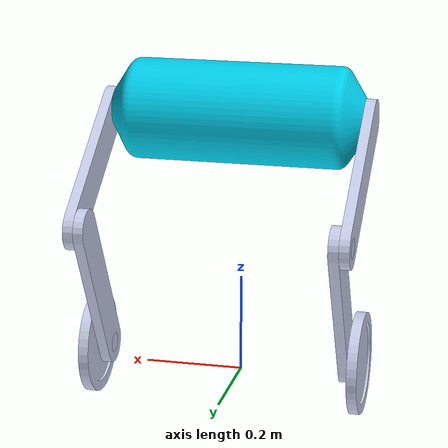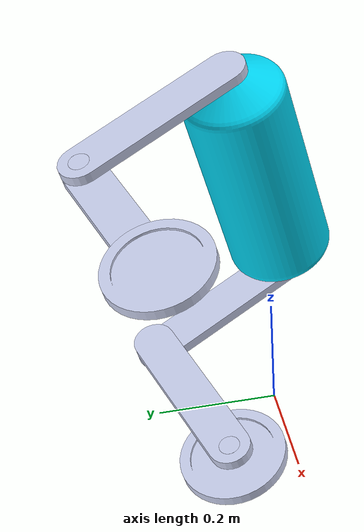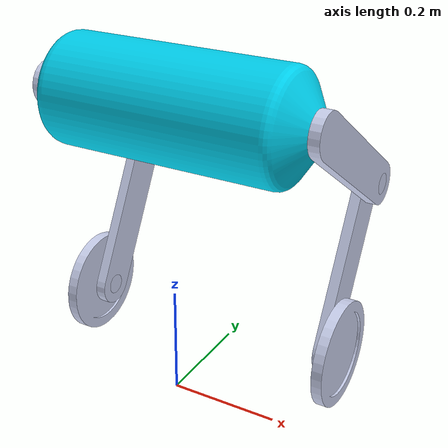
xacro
<?xml version="1.0" encoding="utf-8"?>
<robot xmlns:xacro="http://www.ros.org/wiki/xacro">

  <!--   LINKS               -->
  <link name="base_link"></link>
  <link name="Waist">
    <inertial>
      <origin xyz="-1.18888240640652E-16 -0.00507058467782265 -0.0187972227348701" rpy="0 0 0" />
      <mass value="6.4540071153471" />
      <inertia ixx="0.0700688932175611" ixy="-3.86937762023137E-19" ixz="-1.76854570708965E-20"
        iyy="0.292430846914939" iyz="-1.32037216353675E-18" izz="0.292430846914939" />
    </inertial>
    <visual>
      <origin xyz="0 0 0" rpy="0 0 0" />
      <geometry>
        <mesh filename="file://$(find bpwr)/description/meshes/Waist.STL" />
      </geometry>
      <material name="blue">
        <color rgba="0 0.819607843137255 0.933333333333333 1" />
      </material>
    </visual>
    <collision>
      <origin xyz="0 0 0" rpy="0 0 0" />
      <geometry>
        <mesh filename="file://$(find bpwr)/description/meshes/Waist.STL" />
      </geometry>
    </collision>
  </link>

  <link name="Hip_L">
    <inertial>
      <origin xyz="1.14491749414469E-16 -0.145390450825359 -0.0291728991057009" rpy="0 0 0" />
      <mass value="0.607730964914872" />
      <inertia ixx="0.0072795750548367" ixy="2.80537312130624E-18" ixz="-2.51690953028264E-19"
        iyy="0.000340614101699668" iyz="-7.30812115544072E-05" izz="0.00756039905840226" />
    </inertial>
    <visual>
      <origin xyz="0 0 0" rpy="0 0 0" />
      <geometry>
        <mesh filename="file://$(find bpwr)/description/meshes/Hip_L.STL" />
      </geometry>
      <material name="">
        <color rgba="0.792156862745098 0.819607843137255 0.933333333333333 1" />
      </material>
    </visual>
    <collision>
      <origin xyz="0 0 0" rpy="0 0 0" />
      <geometry>
        <mesh filename="file://$(find bpwr)/description/meshes/Hip_L.STL" />
      </geometry>
    </collision>
  </link>

  <link name="Shin_L">
    <inertial>
      <origin xyz="1.66533453693773E-16 -0.145390450825359 0.0108271008942993" rpy="0 0 0" />
      <mass value="0.607730964914872" />
      <inertia ixx="0.0072795750548367" ixy="1.12079399580689E-17" ixz="2.23616698075135E-19"
        iyy="0.000340614101699668" iyz="-7.30812115544049E-05" izz="0.00756039905840226" />
    </inertial>
    <visual>
      <origin xyz="0 0 0" rpy="0 0 0" />
      <geometry>
        <mesh filename="file://$(find bpwr)/description/meshes/Shin_L.STL" />
      </geometry>
      <material name="">
        <color rgba="0.792156862745098 0.819607843137255 0.933333333333333 1" />
      </material>
    </visual>
    <collision>
      <origin xyz="0 0 0" rpy="0 0 0" />
      <geometry>
        <mesh filename="file://$(find bpwr)/description/meshes/Shin_L.STL" />
      </geometry>
    </collision>
  </link>

  <link name="Wheel_L">
    <inertial>
      <origin xyz="5.55111512312578E-17 0 0.0333783783783784" rpy="0 0 0" />
      <mass value="0.46495571273129" />
      <inertia ixx="0.00127876689292999" ixy="5.42101086242752E-20" ixz="8.80537574413171E-19"
        iyy="0.00127876689292999" iyz="-2.79073771248327E-19" izz="0.00250573430050322" />
    </inertial>
    <visual>
      <origin xyz="0 0 0" rpy="0 0 0" />
      <geometry>
        <mesh filename="file://$(find bpwr)/description/meshes/Wheel_L.STL" />
      </geometry>
      <material name="">
        <color rgba="0.792156862745098 0.819607843137255 0.933333333333333 1" />
      </material>
    </visual>
    <collision>
      <origin xyz="0 0 0" rpy="0 0 0" />
      <geometry>
        <mesh filename="file://$(find bpwr)/description/meshes/Wheel_L.STL" />
      </geometry>
    </collision>
  </link>

  <link name="Hip_R">
    <inertial>
      <origin xyz="1.64798730217797E-17 -0.145390450825359 -0.0291728991057009" rpy="0 0 0" />
      <mass value="0.607730964914872" />
      <inertia ixx="0.0072795750548367" ixy="5.01443504774546E-19" ixz="5.42101086242752E-20"
        iyy="0.000340614101699668" iyz="-7.30812115544088E-05" izz="0.00756039905840226" />
    </inertial>
    <visual>
      <origin xyz="0 0 0" rpy="0 0 0" />
      <geometry>
        <mesh filename="file://$(find bpwr)/description/meshes/Hip_R.STL" />
      </geometry>
      <material name="">
        <color rgba="0.792156862745098 0.819607843137255 0.933333333333333 1" />
      </material>
    </visual>
    <collision>
      <origin xyz="0 0 0" rpy="0 0 0" />
      <geometry>
        <mesh filename="file://$(find bpwr)/description/meshes/Hip_R.STL" />
      </geometry>
    </collision>
  </link>

  <link name="Shin_R">
    <inertial>
      <origin xyz="2.77555756156289E-16 -0.145390450825358 0.0108271008942994" rpy="0 0 0" />
      <mass value="0.607730964914872" />
      <inertia ixx="0.0072795750548367" ixy="-1.31595038685428E-17" ixz="-1.8223425135342E-19"
        iyy="0.000340614101699669" iyz="-7.30812115544176E-05" izz="0.00756039905840226" />
    </inertial>
    <visual>
      <origin xyz="0 0 0" rpy="0 0 0" />
      <geometry>
        <mesh filename="file://$(find bpwr)/description/meshes/Shin_R.STL" />
      </geometry>
      <material name="">
        <color rgba="0.792156862745098 0.819607843137255 0.933333333333333 1" />
      </material>
    </visual>
    <collision>
      <origin xyz="0 0 0" rpy="0 0 0" />
      <geometry>
        <mesh filename="file://$(find bpwr)/description/meshes/Shin_R.STL" />
      </geometry>
    </collision>
  </link>

  <link name="Wheel_R">
    <inertial>
      <origin xyz="-1.0547118733939E-15 -6.10622663543836E-16 0.0333783783783783" rpy="0 0 0" />
      <mass value="0.46495571273129" />
      <inertia ixx="0.00127876689292999" ixy="5.42101086242752E-20" ixz="-2.317331240564E-19"
        iyy="0.00127876689292999" iyz="-1.34164060110775E-20" izz="0.00250573430050322" />
    </inertial>
    <visual>
      <origin xyz="0 0 0" rpy="0 0 0" />
      <geometry>
        <mesh filename="file://$(find bpwr)/description/meshes/Wheel_R.STL" />
      </geometry>
      <material name="">
        <color rgba="0.792156862745098 0.819607843137255 0.933333333333333 1" />
      </material>
    </visual>
    <collision>
      <origin xyz="0 0 0" rpy="0 0 0" />
      <geometry>
        <mesh filename="file://$(find bpwr)/description/meshes/Wheel_R.STL" />
      </geometry>
    </collision>
  </link>

  <!--   JOINTS              -->

  <joint name="L_Hip_Joint" type="revolute">
    <origin xyz="0.23 0.018797 -0.0050706" rpy="1.5708 0.97309 -1.5708" />
    <parent link="Waist" />
    <child link="Hip_L" />
    <axis xyz="0 0 1" />
    <limit lower="-1.57" upper="1.57" effort="50" velocity="10" />
  </joint>

  <joint name="L_Shin_Joint" type="revolute">
    <origin xyz="0 -0.317 0" rpy="-3.1416 0 -1.6808" />
    <parent link="Hip_L" />
    <child link="Shin_L" />
    <axis xyz="0 0 1" />
    <limit lower="-1.57" upper="1.57" effort="50" velocity="10" />
  </joint>

  <joint name="Wheel_L_Joint" type="continuous">
    <origin xyz="0 -0.317 0" rpy="0 0 1.2761" />
    <parent link="Shin_L" />
    <child link="Wheel_L" />
    <axis xyz="0 0 1" />
    <limit lower="-1.57" upper="1.57" effort="50" velocity="10" />
  </joint>

  <joint name="R_Hip_Joint" type="revolute">
    <origin xyz="-0.23 0.018797 -0.0050706" rpy="1.5708 -0.97309 1.5708" />
    <parent link="Waist" />
    <child link="Hip_R" />
    <axis xyz="0 0 1" />
    <limit lower="-1.57" upper="1.57" effort="50" velocity="10" />
  </joint>

  <joint name="R_Shin_Joint" type="revolute">
    <origin xyz="0 -0.317 0" rpy="3.1416 0 1.6808" />
    <parent link="Hip_R" />
    <child link="Shin_R" />
    <axis xyz="0 0 1" />
    <limit lower="-1.57" upper="1.57" effort="50" velocity="10" />
  </joint>

  <joint name="Wheel_R_Joint" type="continuous">
    <origin xyz="0 -0.317 0" rpy="0 0 1.6915" />
    <parent link="Shin_R" />
    <child link="Wheel_R" />
    <axis xyz="0 0 1" />
    <limit lower="0" upper="0" effort="0" velocity="0" />
  </joint>

  <joint name="base_to_waist" type="fixed">
    <parent link="base_link" />
    <child link="Waist" />
    <origin xyz="0 0 0.55" rpy="0 0 0" />
  </joint>

  <!--   GAZEBO REFERENCES   -->

  <gazebo reference="base_link">
    <material>Gazebo/Gray</material>
  </gazebo>

  <gazebo reference="L_Hip_Joint">
    <provideFeedback>true</provideFeedback>
    <damping>2.0</damping>
  </gazebo>

  <gazebo reference="R_Hip_Joint">
    <provideFeedback>true</provideFeedback>
    <damping>2.0</damping>
  </gazebo>

  <gazebo reference="L_Shin_Joint">
    <provideFeedback>true</provideFeedback>
    <damping>2.0</damping>
  </gazebo>

  <gazebo reference="R_Shin_Joint">
    <provideFeedback>true</provideFeedback>
    <damping>2.0</damping>
  </gazebo>

  <gazebo reference="Wheel_L">
    <provideFeedback>true</provideFeedback>
    <damping>0.1</damping>
    <mu1>1.5</mu1>
    <mu2>1.0</mu2>
    <material>Gazebo/Black</material>
  </gazebo>

  <gazebo reference="Wheel_R">
    <material>Gazebo/Black</material>
    <provideFeedback>true</provideFeedback>
    <damping>0.1</damping>
    <mu1>1.5</mu1>
    <mu2>1.0</mu2>
  </gazebo>

  <gazebo reference="Waist">
    <material>Gazebo/Red</material>
  </gazebo>
  <gazebo reference="Hip_L">
    <material>Gazebo/Blue</material>
  </gazebo>
  <gazebo reference="Hip_R">
    <material>Gazebo/Blue</material>
  </gazebo>
  <gazebo reference="Shin_L">
    <material>Gazebo/Green</material>
  </gazebo>

  <gazebo reference="Shin_R">
    <material>Gazebo/Green</material>
  </gazebo>

</robot>
